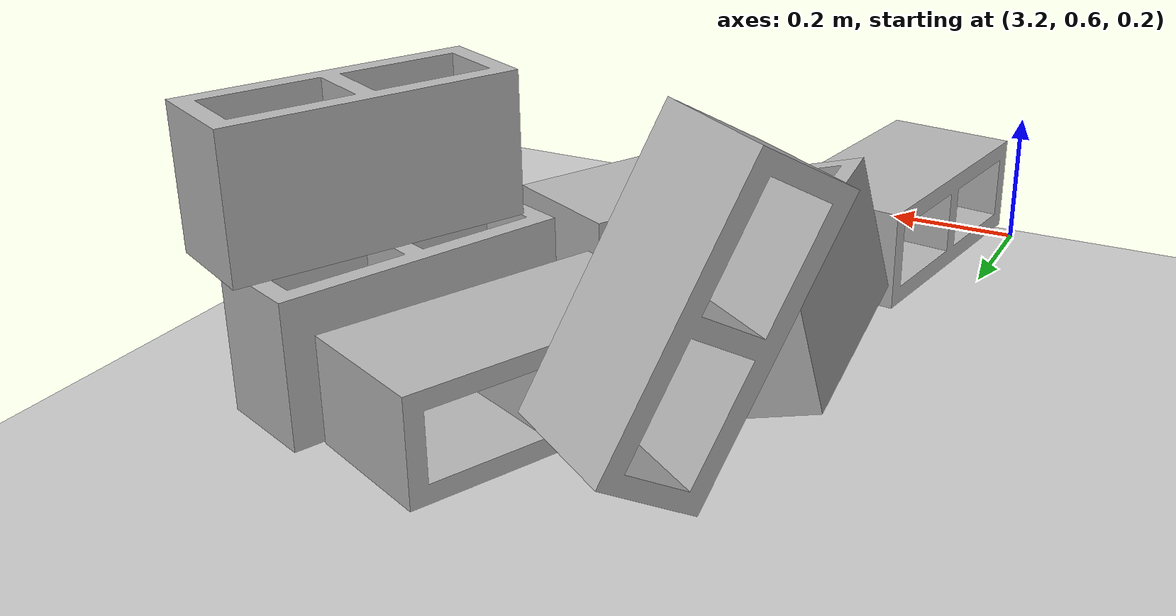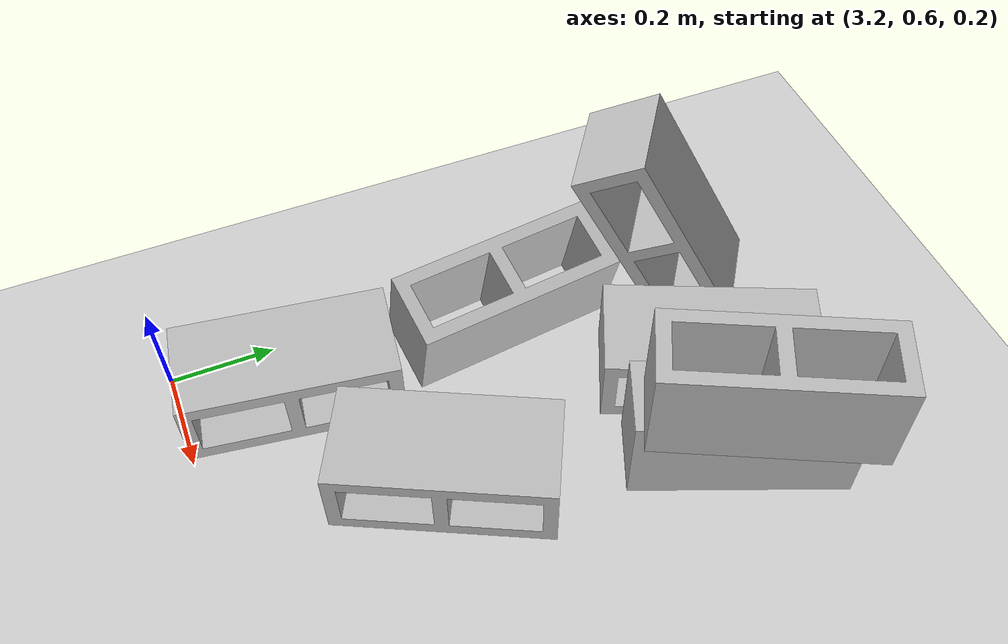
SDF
<sdf version="1.7">
 <world name="default">
  <model name="ground_plane">
   <static>1</static>
   <link name="link">
    <collision name="collision">
     <geometry><plane><normal>0 0 1</normal><size>100 100</size></plane></geometry>
     <surface><friction><ode><mu>100</mu><mu2>50</mu2></ode></friction></surface>
    </collision>
    <visual name="visual">
     <cast_shadows>0</cast_shadows>
     <geometry><plane><normal>0 0 1</normal><size>100 100</size></plane></geometry>
     <material>
      <script><uri>file://media/materials/scripts/gazebo.material</uri><name>Gazebo/Grey</name></script>
     </material>
    </visual>
   </link>
  </model>
  <model name="cinder_block_2_clone_1">
   <link name="link">
    <inertial>
     <pose>0 0 0.071438 0 -0 0</pose>
     <mass>5</mass>
     <inertia>
      <ixx>0.06908</ixx>
      <ixy>0</ixy>
      <iyy>0.028705</iyy>
      <ixz>0</ixz>
      <iyz>0</iyz>
      <izz>0.073708</izz>
     </inertia>
    </inertial>
    <visual name="visual">
     <geometry><mesh><uri>model://cinder_block_2/meshes/cinder_block.dae</uri></mesh></geometry>
    </visual>
    <collision name="top">
     <pose>0 0 0.130175 0 -0 0</pose>
     <geometry><box><size>0.19368 0.396875 0.0254</size></box></geometry>
     <surface>
      <contact><ode><max_vel>0.1</max_vel><min_depth>0.001</min_depth></ode></contact>
      <friction><ode><mu>1</mu><mu2>1</mu2></ode></friction>
     </surface>
    </collision>
    <collision name="bottom">
     <pose>0 0 0.0127 0 -0 0</pose>
     <geometry><box><size>0.19368 0.396875 0.0254</size></box></geometry>
     <surface>
      <contact><ode><max_vel>0.1</max_vel><min_depth>0.001</min_depth></ode></contact>
      <friction><ode><mu>1</mu><mu2>1</mu2></ode></friction>
     </surface>
    </collision>
    <collision name="left">
     <pose>0 -0.185738 0.071438 0 -0 0</pose>
     <geometry><box><size>0.19368 0.0254 0.092075</size></box></geometry>
     <surface>
      <contact><ode><max_vel>0.1</max_vel><min_depth>0.001</min_depth></ode></contact>
      <friction><ode><mu>1</mu><mu2>1</mu2></ode></friction>
     </surface>
    </collision>
    <collision name="right">
     <pose>0 0.185738 0.071438 0 -0 0</pose>
     <geometry><box><size>0.19368 0.0254 0.092075</size></box></geometry>
     <surface>
      <contact><ode><max_vel>0.1</max_vel><min_depth>0.001</min_depth></ode></contact>
      <friction><ode><mu>1</mu><mu2>1</mu2></ode></friction>
     </surface>
    </collision>
    <collision name="middle">
     <pose>0 0 0.071438 0 -0 0</pose>
     <geometry><box><size>0.19368 0.0254 0.092075</size></box></geometry>
     <surface>
      <contact><ode><max_vel>0.1</max_vel><min_depth>0.001</min_depth></ode></contact>
      <friction><ode><mu>1</mu><mu2>1</mu2></ode></friction>
     </surface>
    </collision>
   </link>
   <pose>3.33871 0.810271 0.228143 5.7e-05 -0.000367 -0.139774</pose>
  </model>
  <model name="cinder_block_2_clone_6">
   <link name="link">
    <inertial>
     <pose>0 0 0.071438 0 -0 0</pose>
     <mass>5</mass>
     <inertia>
      <ixx>0.06908</ixx>
      <ixy>0</ixy>
      <iyy>0.028705</iyy>
      <ixz>0</ixz>
      <iyz>0</iyz>
      <izz>0.073708</izz>
     </inertia>
    </inertial>
    <visual name="visual">
     <geometry><mesh><uri>model://cinder_block_2/meshes/cinder_block.dae</uri></mesh></geometry>
    </visual>
    <collision name="top">
     <pose>0 0 0.130175 0 -0 0</pose>
     <geometry><box><size>0.19368 0.396875 0.0254</size></box></geometry>
     <surface>
      <contact><ode><max_vel>0.1</max_vel><min_depth>0.001</min_depth></ode></contact>
      <friction><ode><mu>1</mu><mu2>1</mu2></ode></friction>
     </surface>
    </collision>
    <collision name="bottom">
     <pose>0 0 0.0127 0 -0 0</pose>
     <geometry><box><size>0.19368 0.396875 0.0254</size></box></geometry>
     <surface>
      <contact><ode><max_vel>0.1</max_vel><min_depth>0.001</min_depth></ode></contact>
      <friction><ode><mu>1</mu><mu2>1</mu2></ode></friction>
     </surface>
    </collision>
    <collision name="left">
     <pose>0 -0.185738 0.071438 0 -0 0</pose>
     <geometry><box><size>0.19368 0.0254 0.092075</size></box></geometry>
     <surface>
      <contact><ode><max_vel>0.1</max_vel><min_depth>0.001</min_depth></ode></contact>
      <friction><ode><mu>1</mu><mu2>1</mu2></ode></friction>
     </surface>
    </collision>
    <collision name="right">
     <pose>0 0.185738 0.071438 0 -0 0</pose>
     <geometry><box><size>0.19368 0.0254 0.092075</size></box></geometry>
     <surface>
      <contact><ode><max_vel>0.1</max_vel><min_depth>0.001</min_depth></ode></contact>
      <friction><ode><mu>1</mu><mu2>1</mu2></ode></friction>
     </surface>
    </collision>
    <collision name="middle">
     <pose>0 0 0.071438 0 -0 0</pose>
     <geometry><box><size>0.19368 0.0254 0.092075</size></box></geometry>
     <surface>
      <contact><ode><max_vel>0.1</max_vel><min_depth>0.001</min_depth></ode></contact>
      <friction><ode><mu>1</mu><mu2>1</mu2></ode></friction>
     </surface>
    </collision>
   </link>
   <pose>3.58607 1.54589 0.370967 3.141 0.001287 2.72673</pose>
  </model>
  <model name="cinder_block_2_clone_5_clone_clone_3">
   <link name="link">
    <inertial>
     <pose>0 0 0.071438 0 -0 0</pose>
     <mass>5</mass>
     <inertia>
      <ixx>0.06908</ixx>
      <ixy>0</ixy>
      <iyy>0.028705</iyy>
      <ixz>0</ixz>
      <iyz>0</iyz>
      <izz>0.073708</izz>
     </inertia>
    </inertial>
    <visual name="visual">
     <geometry><mesh><uri>model://cinder_block_2/meshes/cinder_block.dae</uri></mesh></geometry>
    </visual>
    <collision name="top">
     <pose>0 0 0.130175 0 -0 0</pose>
     <geometry><box><size>0.19368 0.396875 0.0254</size></box></geometry>
     <surface>
      <contact><ode><max_vel>0.1</max_vel><min_depth>0.001</min_depth></ode></contact>
      <friction><ode><mu>1</mu><mu2>1</mu2></ode></friction>
     </surface>
    </collision>
    <collision name="bottom">
     <pose>0 0 0.0127 0 -0 0</pose>
     <geometry><box><size>0.19368 0.396875 0.0254</size></box></geometry>
     <surface>
      <contact><ode><max_vel>0.1</max_vel><min_depth>0.001</min_depth></ode></contact>
      <friction><ode><mu>1</mu><mu2>1</mu2></ode></friction>
     </surface>
    </collision>
    <collision name="left">
     <pose>0 -0.185738 0.071438 0 -0 0</pose>
     <geometry><box><size>0.19368 0.0254 0.092075</size></box></geometry>
     <surface>
      <contact><ode><max_vel>0.1</max_vel><min_depth>0.001</min_depth></ode></contact>
      <friction><ode><mu>1</mu><mu2>1</mu2></ode></friction>
     </surface>
    </collision>
    <collision name="right">
     <pose>0 0.185738 0.071438 0 -0 0</pose>
     <geometry><box><size>0.19368 0.0254 0.092075</size></box></geometry>
     <surface>
      <contact><ode><max_vel>0.1</max_vel><min_depth>0.001</min_depth></ode></contact>
      <friction><ode><mu>1</mu><mu2>1</mu2></ode></friction>
     </surface>
    </collision>
    <collision name="middle">
     <pose>0 0 0.071438 0 -0 0</pose>
     <geometry><box><size>0.19368 0.0254 0.092075</size></box></geometry>
     <surface>
      <contact><ode><max_vel>0.1</max_vel><min_depth>0.001</min_depth></ode></contact>
      <friction><ode><mu>1</mu><mu2>1</mu2></ode></friction>
     </surface>
    </collision>
   </link>
   <pose>3.41372 1.23755 0.322175 0.004616 -1.32846 0.115629</pose>
  </model>
  <model name="cinder_block_2_clone_5_clone_clone_4">
   <link name="link">
    <inertial>
     <pose>0 0 0.071438 0 -0 0</pose>
     <mass>5</mass>
     <inertia>
      <ixx>0.06908</ixx>
      <ixy>0</ixy>
      <iyy>0.028705</iyy>
      <ixz>0</ixz>
      <iyz>0</iyz>
      <izz>0.073708</izz>
     </inertia>
    </inertial>
    <visual name="visual">
     <geometry><mesh><uri>model://cinder_block_2/meshes/cinder_block.dae</uri></mesh></geometry>
    </visual>
    <collision name="top">
     <pose>0 0 0.130175 0 -0 0</pose>
     <geometry><box><size>0.19368 0.396875 0.0254</size></box></geometry>
     <surface>
      <contact><ode><max_vel>0.1</max_vel><min_depth>0.001</min_depth></ode></contact>
      <friction><ode><mu>1</mu><mu2>1</mu2></ode></friction>
     </surface>
    </collision>
    <collision name="bottom">
     <pose>0 0 0.0127 0 -0 0</pose>
     <geometry><box><size>0.19368 0.396875 0.0254</size></box></geometry>
     <surface>
      <contact><ode><max_vel>0.1</max_vel><min_depth>0.001</min_depth></ode></contact>
      <friction><ode><mu>1</mu><mu2>1</mu2></ode></friction>
     </surface>
    </collision>
    <collision name="left">
     <pose>0 -0.185738 0.071438 0 -0 0</pose>
     <geometry><box><size>0.19368 0.0254 0.092075</size></box></geometry>
     <surface>
      <contact><ode><max_vel>0.1</max_vel><min_depth>0.001</min_depth></ode></contact>
      <friction><ode><mu>1</mu><mu2>1</mu2></ode></friction>
     </surface>
    </collision>
    <collision name="right">
     <pose>0 0.185738 0.071438 0 -0 0</pose>
     <geometry><box><size>0.19368 0.0254 0.092075</size></box></geometry>
     <surface>
      <contact><ode><max_vel>0.1</max_vel><min_depth>0.001</min_depth></ode></contact>
      <friction><ode><mu>1</mu><mu2>1</mu2></ode></friction>
     </surface>
    </collision>
    <collision name="middle">
     <pose>0 0 0.071438 0 -0 0</pose>
     <geometry><box><size>0.19368 0.0254 0.092075</size></box></geometry>
     <surface>
      <contact><ode><max_vel>0.1</max_vel><min_depth>0.001</min_depth></ode></contact>
      <friction><ode><mu>1</mu><mu2>1</mu2></ode></friction>
     </surface>
    </collision>
   </link>
   <pose>3.75703 1.53846 0.518666 3.00796 1.57078 2.557</pose>
  </model>
  <model name="cinder_block_2_clone_5_clone_clone_5">
   <link name="link">
    <inertial>
     <pose>0 0 0.071438 0 -0 0</pose>
     <mass>5</mass>
     <inertia>
      <ixx>0.06908</ixx>
      <ixy>0</ixy>
      <iyy>0.028705</iyy>
      <ixz>0</ixz>
      <iyz>0</iyz>
      <izz>0.073708</izz>
     </inertia>
    </inertial>
    <visual name="visual">
     <geometry><mesh><uri>model://cinder_block_2/meshes/cinder_block.dae</uri></mesh></geometry>
    </visual>
    <collision name="top">
     <pose>0 0 0.130175 0 -0 0</pose>
     <geometry><box><size>0.19368 0.396875 0.0254</size></box></geometry>
     <surface>
      <contact><ode><max_vel>0.1</max_vel><min_depth>0.001</min_depth></ode></contact>
      <friction><ode><mu>1</mu><mu2>1</mu2></ode></friction>
     </surface>
    </collision>
    <collision name="bottom">
     <pose>0 0 0.0127 0 -0 0</pose>
     <geometry><box><size>0.19368 0.396875 0.0254</size></box></geometry>
     <surface>
      <contact><ode><max_vel>0.1</max_vel><min_depth>0.001</min_depth></ode></contact>
      <friction><ode><mu>1</mu><mu2>1</mu2></ode></friction>
     </surface>
    </collision>
    <collision name="left">
     <pose>0 -0.185738 0.071438 0 -0 0</pose>
     <geometry><box><size>0.19368 0.0254 0.092075</size></box></geometry>
     <surface>
      <contact><ode><max_vel>0.1</max_vel><min_depth>0.001</min_depth></ode></contact>
      <friction><ode><mu>1</mu><mu2>1</mu2></ode></friction>
     </surface>
    </collision>
    <collision name="right">
     <pose>0 0.185738 0.071438 0 -0 0</pose>
     <geometry><box><size>0.19368 0.0254 0.092075</size></box></geometry>
     <surface>
      <contact><ode><max_vel>0.1</max_vel><min_depth>0.001</min_depth></ode></contact>
      <friction><ode><mu>1</mu><mu2>1</mu2></ode></friction>
     </surface>
    </collision>
    <collision name="middle">
     <pose>0 0 0.071438 0 -0 0</pose>
     <geometry><box><size>0.19368 0.0254 0.092075</size></box></geometry>
     <surface>
      <contact><ode><max_vel>0.1</max_vel><min_depth>0.001</min_depth></ode></contact>
      <friction><ode><mu>1</mu><mu2>1</mu2></ode></friction>
     </surface>
    </collision>
   </link>
   <pose>3.70035 1.53788 0.324986 2.91173 1.57079 2.53469</pose>
  </model>
  <model name="cinder_block_2_clone_5_clone_clone_7">
   <link name="link">
    <inertial>
     <pose>0 0 0.071438 0 -0 0</pose>
     <mass>5</mass>
     <inertia>
      <ixx>0.06908</ixx>
      <ixy>0</ixy>
      <iyy>0.028705</iyy>
      <ixz>0</ixz>
      <iyz>0</iyz>
      <izz>0.073708</izz>
     </inertia>
    </inertial>
    <visual name="visual">
     <geometry><mesh><uri>model://cinder_block_2/meshes/cinder_block.dae</uri></mesh></geometry>
    </visual>
    <collision name="top">
     <pose>0 0 0.130175 0 -0 0</pose>
     <geometry><box><size>0.19368 0.396875 0.0254</size></box></geometry>
     <surface>
      <contact><ode><max_vel>0.1</max_vel><min_depth>0.001</min_depth></ode></contact>
      <friction><ode><mu>1</mu><mu2>1</mu2></ode></friction>
     </surface>
    </collision>
    <collision name="bottom">
     <pose>0 0 0.0127 0 -0 0</pose>
     <geometry><box><size>0.19368 0.396875 0.0254</size></box></geometry>
     <surface>
      <contact><ode><max_vel>0.1</max_vel><min_depth>0.001</min_depth></ode></contact>
      <friction><ode><mu>1</mu><mu2>1</mu2></ode></friction>
     </surface>
    </collision>
    <collision name="left">
     <pose>0 -0.185738 0.071438 0 -0 0</pose>
     <geometry><box><size>0.19368 0.0254 0.092075</size></box></geometry>
     <surface>
      <contact><ode><max_vel>0.1</max_vel><min_depth>0.001</min_depth></ode></contact>
      <friction><ode><mu>1</mu><mu2>1</mu2></ode></friction>
     </surface>
    </collision>
    <collision name="right">
     <pose>0 0.185738 0.071438 0 -0 0</pose>
     <geometry><box><size>0.19368 0.0254 0.092075</size></box></geometry>
     <surface>
      <contact><ode><max_vel>0.1</max_vel><min_depth>0.001</min_depth></ode></contact>
      <friction><ode><mu>1</mu><mu2>1</mu2></ode></friction>
     </surface>
    </collision>
    <collision name="middle">
     <pose>0 0 0.071438 0 -0 0</pose>
     <geometry><box><size>0.19368 0.0254 0.092075</size></box></geometry>
     <surface>
      <contact><ode><max_vel>0.1</max_vel><min_depth>0.001</min_depth></ode></contact>
      <friction><ode><mu>1</mu><mu2>1</mu2></ode></friction>
     </surface>
    </collision>
   </link>
   <pose>3.62748 1.01342 0.371014 3.14147 -7.4e-05 2.68484</pose>
  </model>
  <model name="cinder_block_2_clone_5_clone_clone_8">
   <link name="link">
    <inertial>
     <pose>0 0 0.071438 0 -0 0</pose>
     <mass>5</mass>
     <inertia>
      <ixx>0.06908</ixx>
      <ixy>0</ixy>
      <iyy>0.028705</iyy>
      <ixz>0</ixz>
      <iyz>0</iyz>
      <izz>0.073708</izz>
     </inertia>
    </inertial>
    <visual name="visual">
     <geometry><mesh><uri>model://cinder_block_2/meshes/cinder_block.dae</uri></mesh></geometry>
    </visual>
    <collision name="top">
     <pose>0 0 0.130175 0 -0 0</pose>
     <geometry><box><size>0.19368 0.396875 0.0254</size></box></geometry>
     <surface>
      <contact><ode><max_vel>0.1</max_vel><min_depth>0.001</min_depth></ode></contact>
      <friction><ode><mu>1</mu><mu2>1</mu2></ode></friction>
     </surface>
    </collision>
    <collision name="bottom">
     <pose>0 0 0.0127 0 -0 0</pose>
     <geometry><box><size>0.19368 0.396875 0.0254</size></box></geometry>
     <surface>
      <contact><ode><max_vel>0.1</max_vel><min_depth>0.001</min_depth></ode></contact>
      <friction><ode><mu>1</mu><mu2>1</mu2></ode></friction>
     </surface>
    </collision>
    <collision name="left">
     <pose>0 -0.185738 0.071438 0 -0 0</pose>
     <geometry><box><size>0.19368 0.0254 0.092075</size></box></geometry>
     <surface>
      <contact><ode><max_vel>0.1</max_vel><min_depth>0.001</min_depth></ode></contact>
      <friction><ode><mu>1</mu><mu2>1</mu2></ode></friction>
     </surface>
    </collision>
    <collision name="right">
     <pose>0 0.185738 0.071438 0 -0 0</pose>
     <geometry><box><size>0.19368 0.0254 0.092075</size></box></geometry>
     <surface>
      <contact><ode><max_vel>0.1</max_vel><min_depth>0.001</min_depth></ode></contact>
      <friction><ode><mu>1</mu><mu2>1</mu2></ode></friction>
     </surface>
    </collision>
    <collision name="middle">
     <pose>0 0 0.071438 0 -0 0</pose>
     <geometry><box><size>0.19368 0.0254 0.092075</size></box></geometry>
     <surface>
      <contact><ode><max_vel>0.1</max_vel><min_depth>0.001</min_depth></ode></contact>
      <friction><ode><mu>1</mu><mu2>1</mu2></ode></friction>
     </surface>
    </collision>
   </link>
   <pose>3.31621 1.49842 0.400889 -1.05605 -0.000453 -0.598603</pose>
  </model>
 </world>
</sdf>
